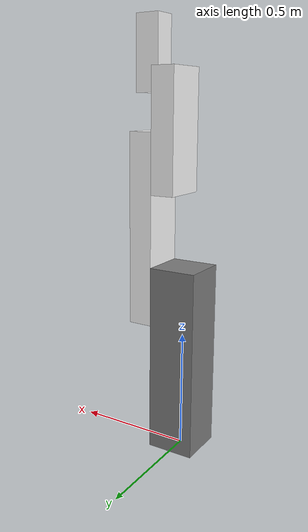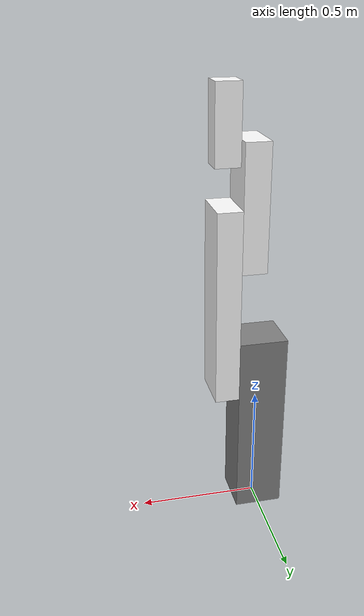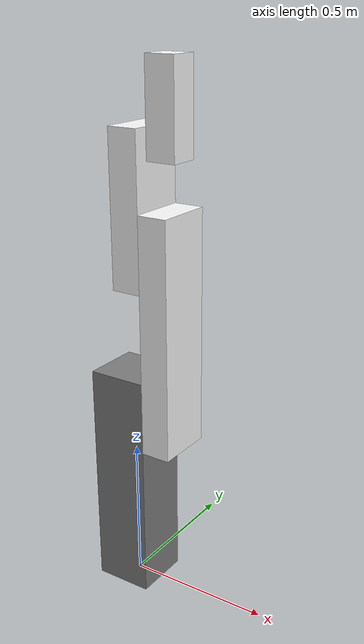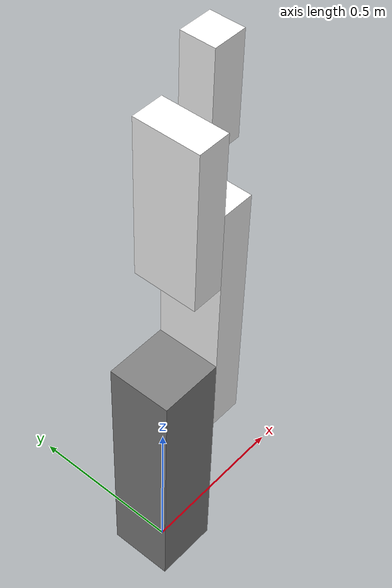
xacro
<?xml version="1.0"?>

<robot xmlns:xacro="http://www.ros.org/wiki/xacro" name="three_dof_robot">

  <!-- Includes de Gazebo y ROS2 Control -->
  <xacro:include filename="$(find lab5_ros2control_new_gazebo)/models/three_dof/three_dof.gazebo.xacro" />
  <xacro:include filename="$(find lab5_ros2control_new_gazebo)/models/three_dof/three_dof.ros2control.xacro" />

  <xacro:property name="M_PI" value="3.14159274"/>

  <!-- Macro de inercia para prismas rectangulares -->
  <xacro:macro name="box_inertia" params="m w h d">
    <inertial>
      <origin xyz="0 0 0" rpy="0 0 0"/>
      <mass value="${m}"/>
      <inertia
        ixx="${(m/12) * (h*h + d*d)}"
        ixy="0.0"
        ixz="0.0"
        iyy="${(m/12) * (w*w + d*d)}"
        iyz="0.0"
        izz="${(m/12) * (w*w + h*h)}"/>
    </inertial>
  </xacro:macro>

  <!-- Materiales -->
  <material name="gray">
    <color rgba="0.5 0.5 0.5 1.0"/>
  </material>
  <material name="white">
    <color rgba="1.0 1.0 1.0 1.0"/>
  </material>

  <!-- Huella en el suelo -->
  <link name="base_footprint"/>
  <joint name="base_footprint_fixed" type="fixed">
    <parent link="base_footprint"/>
    <child link="base_link"/>
    <origin xyz="0 0 0" rpy="0 0 0"/>
  </joint>

  <!-- Base link -->
  <link name="base_link">
    <visual>
      <origin xyz="0 0 0.4" rpy="0 0 0"/>
      <geometry>
        <box size="0.2 0.2 0.8"/>
      </geometry>
      <material name="gray"/>
    </visual>
    <collision>
      <origin xyz="0 0 0.4" rpy="0 0 0"/>
      <geometry>
        <box size="0.2 0.2 0.8"/>
      </geometry>
    </collision>
    <xacro:box_inertia m="5.0" w="0.2" h="0.2" d="0.8"/>
  </link>

  <!-- Junta revolución rotando sobre Y -->
  <joint name="base_to_moving" type="revolute">
    <parent link="base_link"/>
    <child link="moving_link"/>
    <origin xyz="0.15 0.0 0.7" rpy="0 0 0"/>
    <axis xyz="1 0 0"/>
    <limit lower="-${M_PI}" upper="${M_PI}" effort="10.0" velocity="2.0"/>
    <dynamics damping="0.1" friction="0.1"/>
  </joint>

  <!-- Moving link 1 -->
  <link name="moving_link">
    <visual>
      <origin xyz="0.0 0.0 0.25" rpy="0 0 0"/>
      <geometry>
        <box size="0.1 0.2 0.8"/>
      </geometry>
      <material name="white"/>
    </visual>
    <collision>
      <origin xyz="0.0 0.0 0.25" rpy="0 0 0"/>
      <geometry>
        <box size="0.1 0.2 0.8"/>
      </geometry>
    </collision>
    <xacro:box_inertia m="0.3" w="0.1" h="0.2" d="0.8"/>
  </link>

    <!-- Junta revolución rotando sobre Y -->
  <joint name="arm_to_moving" type="revolute">
    <parent link="moving_link"/>
    <child link="arm_link"/>
    <origin xyz="0 0 0.5" rpy="0 0 0"/>
    <axis xyz="1 0 0"/>
    <limit lower="-${M_PI}" upper="${M_PI}" effort="10.0" velocity="2.0"/>
    <dynamics damping="0.1" friction="0.1"/>
  </joint>

  <!-- Moving link 2 -->
  <link name="arm_link">
    <visual>
      <origin xyz="-0.1 0 0.15" rpy="0 0 0"/>
      <geometry>
        <box size="0.1 0.2 0.5"/>
      </geometry>
      <material name="white"/>
    </visual>
    <collision>
      <origin xyz="0.8 0.1 0" rpy="0 0 0"/>
      <geometry>
        <box size="0.1 0.2 0.25"/>
      </geometry>
    </collision>
    <xacro:box_inertia m="0.3" w="0.1" h="0.2" d="0.5"/>
  </link>

  <!-- Junta revolución rotando sobre Z -->
  <joint name="arm_to_forearm" type="revolute">
    <parent link="arm_link"/>
    <child link="forearm_link"/>
    <origin xyz="0 0 0.3" rpy="0 0 0"/>
    <axis xyz="1 0 0"/>
    <limit lower="-${M_PI}" upper="${M_PI}" effort="10.0" velocity="2.0"/>
    <dynamics damping="0.1" friction="0.1"/>
  </joint>

  <!-- Moving link 3 -->
  <link name="forearm_link">
    <visual>
      <origin xyz="0.0 0.0 0.15" rpy="0 0 0"/>
      <geometry>
        <box size="0.1 0.1 0.3"/>
      </geometry>
      <material name="white"/>
    </visual>
    <collision>
      <origin xyz="0.0 0.0 0.15" rpy="0 0 0"/>
      <geometry>
        <box size="0.1 0.1 0.3"/>
      </geometry>
    </collision>
    <xacro:box_inertia m="0.2" w="0.1" h="0.1" d="0.3"/>
  </link>

  <!-- =============== Gazebo y ROS2 Control =============== -->
  <xacro:robot_gazebo/>
  <xacro:robot_ros2control/>
</robot>
